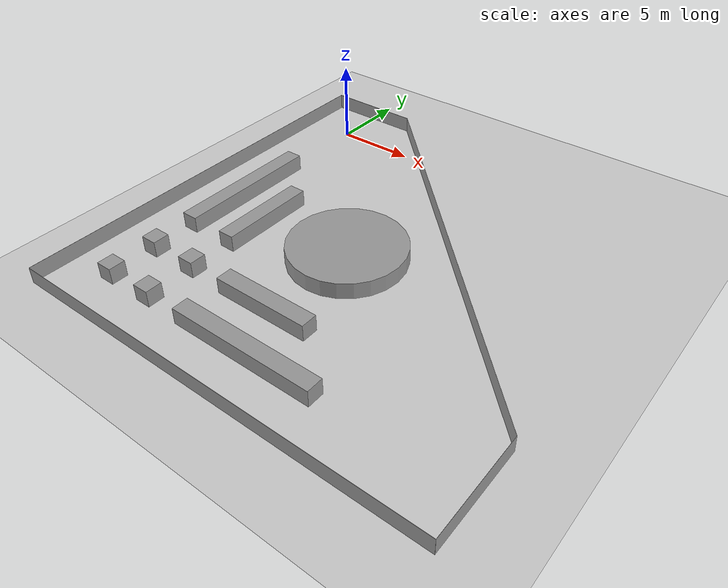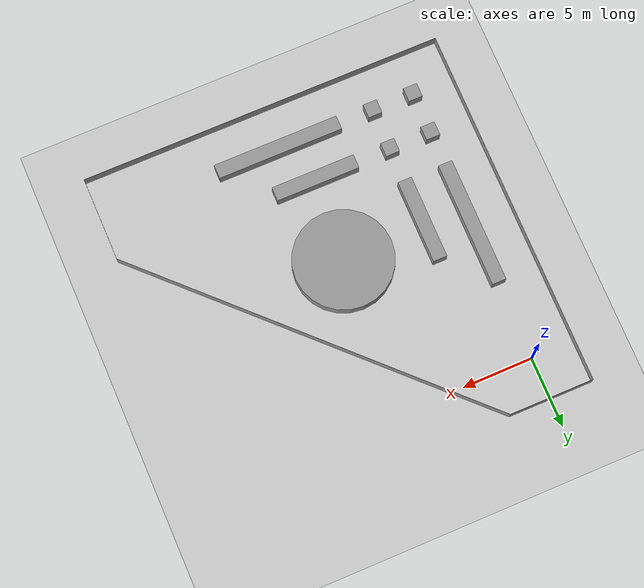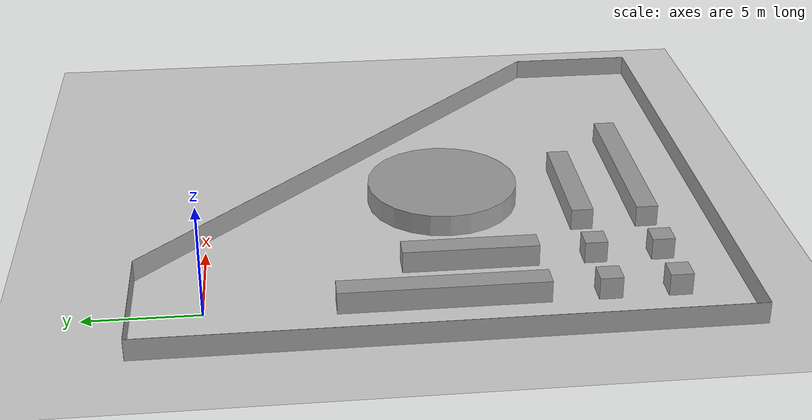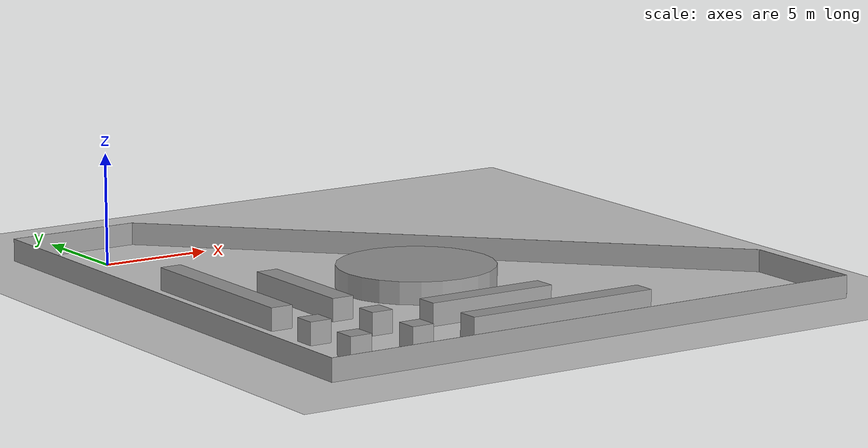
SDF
<sdf version="1.4">
 <world name="default">
  <light name="sun" type="directional">
   <pose>0 0 10 0 -0 0</pose>
   <diffuse>0.8 0.8 0.8 1</diffuse>
   <specular>0.2 0.2 0.2 1</specular>
   <attenuation>
    <range>1000</range>
    <constant>0.9</constant>
    <linear>0.01</linear>
    <quadratic>0.001</quadratic>
   </attenuation>
   <direction>-0.5 0.1 -0.9</direction>
  </light>
  <model name="ground_plane">
   <static>1</static>
   <link name="link">
    <collision name="collision">
     <geometry><plane><normal>0 0 1</normal><size>100 100</size></plane></geometry>
     <surface><friction><ode><mu>100</mu><mu2>50</mu2></ode></friction></surface>
    </collision>
    <visual name="visual">
     <cast_shadows>0</cast_shadows>
     <geometry><plane><normal>0 0 1</normal><size>100 100</size></plane></geometry>
     <material>
      <script><uri>file://media/materials/scripts/gazebo.material</uri><name>Gazebo/Grey</name></script>
     </material>
    </visual>
    <velocity_decay><linear>0</linear><angular>0</angular></velocity_decay>
   </link>
  </model>
  <physics type="ode">
   <max_step_size>0.001</max_step_size>
   <real_time_factor>1</real_time_factor>
   <real_time_update_rate>1000</real_time_update_rate>
   <gravity>0 0 -9.8</gravity>
  </physics>
  <scene><ambient>0.4 0.4 0.4 1</ambient><background>0.7 0.7 0.7 1</background><shadows>1</shadows></scene>
  <spherical_coordinates>
   <surface_model>EARTH_WGS84</surface_model>
   <latitude_deg>0</latitude_deg>
   <longitude_deg>0</longitude_deg>
   <elevation>0</elevation>
   <heading_deg>0</heading_deg>
  </spherical_coordinates>
  <model name="north_wall">
   <pose>23 -20 0.5 0 -0 0</pose>
   <link name="link">
    <inertial>
     <mass>1</mass>
     <inertia><ixx>1</ixx><ixy>0</ixy><ixz>0</ixz><iyy>1</iyy><iyz>0</iyz><izz>1</izz></inertia>
    </inertial>
    <collision name="collision"><geometry><box><size>0.01 6 1</size></box></geometry></collision>
    <visual name="visual">
     <geometry><box><size>0.01 6 1</size></box></geometry>
     <material>
      <script><uri>file://media/materials/scripts/gazebo.material</uri><name>Gazebo/Grey</name></script>
     </material>
    </visual>
    <velocity_decay><linear>0</linear><angular>0</angular></velocity_decay>
   </link>
   <static>1</static>
  </model>
  <model name="south_wall">
   <pose>-3 -10 0.5 0 -0 0</pose>
   <link name="link">
    <inertial>
     <mass>1</mass>
     <inertia><ixx>1</ixx><ixy>0</ixy><ixz>0</ixz><iyy>1</iyy><iyz>0</iyz><izz>1</izz></inertia>
    </inertial>
    <collision name="collision"><geometry><box><size>0.01 26 1</size></box></geometry></collision>
    <visual name="visual">
     <geometry><box><size>0.01 26 1</size></box></geometry>
     <material>
      <script><uri>file://media/materials/scripts/gazebo.material</uri><name>Gazebo/Grey</name></script>
     </material>
    </visual>
    <velocity_decay><linear>0</linear><angular>0</angular></velocity_decay>
   </link>
   <static>1</static>
  </model>
  <model name="east_wall">
   <pose>10 -23 0.5 0 -0 0</pose>
   <link name="link">
    <inertial>
     <mass>1</mass>
     <inertia><ixx>1</ixx><ixy>0</ixy><ixz>0</ixz><iyy>1</iyy><iyz>0</iyz><izz>1</izz></inertia>
    </inertial>
    <collision name="collision"><geometry><box><size>26 0.01 1</size></box></geometry></collision>
    <visual name="visual">
     <geometry><box><size>26 0.01 1</size></box></geometry>
     <material>
      <script><uri>file://media/materials/scripts/gazebo.material</uri><name>Gazebo/Grey</name></script>
     </material>
    </visual>
    <velocity_decay><linear>0</linear><angular>0</angular></velocity_decay>
   </link>
   <static>1</static>
  </model>
  <model name="west_wall">
   <pose>0 3 0.5 0 -0 0</pose>
   <link name="link">
    <inertial>
     <mass>1</mass>
     <inertia><ixx>1</ixx><ixy>0</ixy><ixz>0</ixz><iyy>1</iyy><iyz>0</iyz><izz>1</izz></inertia>
    </inertial>
    <collision name="collision"><geometry><box><size>6 0.01 1</size></box></geometry></collision>
    <visual name="visual">
     <geometry><box><size>6 0.01 1</size></box></geometry>
     <material>
      <script><uri>file://media/materials/scripts/gazebo.material</uri><name>Gazebo/Grey</name></script>
     </material>
    </visual>
    <velocity_decay><linear>0</linear><angular>0</angular></velocity_decay>
   </link>
   <static>1</static>
  </model>
  <model name="diag_wall">
   <pose>13 -7 0.5 0 -0 -0.785398</pose>
   <link name="link">
    <inertial>
     <mass>1</mass>
     <inertia><ixx>1</ixx><ixy>0</ixy><ixz>0</ixz><iyy>1</iyy><iyz>0</iyz><izz>1</izz></inertia>
    </inertial>
    <collision name="collision"><geometry><box><size>28.2842712475 0.01 1</size></box></geometry></collision>
    <visual name="visual">
     <geometry><box><size>28.2842712475 0.01 1</size></box></geometry>
     <material>
      <script><uri>file://media/materials/scripts/gazebo.material</uri><name>Gazebo/Grey</name></script>
     </material>
    </visual>
    <velocity_decay><linear>0</linear><angular>0</angular></velocity_decay>
   </link>
   <static>1</static>
  </model>
  <model name="divider_1">
   <pose>9 -11 0.5 0 -0 0.78539816339</pose>
   <link name="link">
    <inertial>
     <mass>1</mass>
     <inertia><ixx>1</ixx><ixy>0</ixy><ixz>0</ixz><iyy>1</iyy><iyz>0</iyz><izz>1</izz></inertia>
    </inertial>
    <collision name="collision">
     <geometry><cylinder><radius>3.5</radius><length>1</length></cylinder></geometry>
    </collision>
    <visual name="visual">
     <geometry><cylinder><radius>3.5</radius><length>1</length></cylinder></geometry>
     <material>
      <script><uri>file://media/materials/scripts/gazebo.material</uri><name>Gazebo/Grey</name></script>
     </material>
    </visual>
    <velocity_decay><linear>0</linear><angular>0</angular></velocity_decay>
   </link>
   <static>1</static>
  </model>
  <model name="divider_2">
   <pose>8.5 -17 0.5 0 -0 0</pose>
   <link name="link">
    <inertial>
     <mass>1</mass>
     <inertia><ixx>1</ixx><ixy>0</ixy><ixz>0</ixz><iyy>1</iyy><iyz>0</iyz><izz>1</izz></inertia>
    </inertial>
    <collision name="collision"><geometry><box><size>6 1 1</size></box></geometry></collision>
    <visual name="visual">
     <geometry><box><size>6 1 1</size></box></geometry>
     <material>
      <script><uri>file://media/materials/scripts/gazebo.material</uri><name>Gazebo/Grey</name></script>
     </material>
    </visual>
    <velocity_decay><linear>0</linear><angular>0</angular></velocity_decay>
   </link>
   <static>1</static>
  </model>
  <model name="divider_3">
   <pose>10 -20 0.5 0 -0 0</pose>
   <link name="link">
    <inertial>
     <mass>1</mass>
     <inertia><ixx>1</ixx><ixy>0</ixy><ixz>0</ixz><iyy>1</iyy><iyz>0</iyz><izz>1</izz></inertia>
    </inertial>
    <collision name="collision"><geometry><box><size>9 1 1</size></box></geometry></collision>
    <visual name="visual">
     <geometry><box><size>9 1 1</size></box></geometry>
     <material>
      <script><uri>file://media/materials/scripts/gazebo.material</uri><name>Gazebo/Grey</name></script>
     </material>
    </visual>
    <velocity_decay><linear>0</linear><angular>0</angular></velocity_decay>
   </link>
   <static>1</static>
  </model>
  <model name="divider_4">
   <pose>3 -11.5 0.5 0 -0 0</pose>
   <link name="link">
    <inertial>
     <mass>1</mass>
     <inertia><ixx>1</ixx><ixy>0</ixy><ixz>0</ixz><iyy>1</iyy><iyz>0</iyz><izz>1</izz></inertia>
    </inertial>
    <collision name="collision"><geometry><box><size>1 6 1</size></box></geometry></collision>
    <visual name="visual">
     <geometry><box><size>1 6 1</size></box></geometry>
     <material>
      <script><uri>file://media/materials/scripts/gazebo.material</uri><name>Gazebo/Grey</name></script>
     </material>
    </visual>
    <velocity_decay><linear>0</linear><angular>0</angular></velocity_decay>
   </link>
   <static>1</static>
  </model>
  <model name="divider_5">
   <pose>3 -17 0.5 0 -0 0</pose>
   <link name="link">
    <inertial>
     <mass>1</mass>
     <inertia><ixx>1</ixx><ixy>0</ixy><ixz>0</ixz><iyy>1</iyy><iyz>0</iyz><izz>1</izz></inertia>
    </inertial>
    <collision name="collision"><geometry><box><size>1 1 1</size></box></geometry></collision>
    <visual name="visual">
     <geometry><box><size>1 1 1</size></box></geometry>
     <material>
      <script><uri>file://media/materials/scripts/gazebo.material</uri><name>Gazebo/Grey</name></script>
     </material>
    </visual>
    <velocity_decay><linear>0</linear><angular>0</angular></velocity_decay>
   </link>
   <static>1</static>
  </model>
  <model name="divider_6">
   <pose>3 -20 0.5 0 -0 0</pose>
   <link name="link">
    <inertial>
     <mass>1</mass>
     <inertia><ixx>1</ixx><ixy>0</ixy><ixz>0</ixz><iyy>1</iyy><iyz>0</iyz><izz>1</izz></inertia>
    </inertial>
    <collision name="collision"><geometry><box><size>1 1 1</size></box></geometry></collision>
    <visual name="visual">
     <geometry><box><size>1 1 1</size></box></geometry>
     <material>
      <script><uri>file://media/materials/scripts/gazebo.material</uri><name>Gazebo/Grey</name></script>
     </material>
    </visual>
    <velocity_decay><linear>0</linear><angular>0</angular></velocity_decay>
   </link>
   <static>1</static>
  </model>
  <model name="divider_7">
   <pose>0 -10 0.5 0 -0 0</pose>
   <link name="link">
    <inertial>
     <mass>1</mass>
     <inertia><ixx>1</ixx><ixy>0</ixy><ixz>0</ixz><iyy>1</iyy><iyz>0</iyz><izz>1</izz></inertia>
    </inertial>
    <collision name="collision"><geometry><box><size>1 9 1</size></box></geometry></collision>
    <visual name="visual">
     <geometry><box><size>1 9 1</size></box></geometry>
     <material>
      <script><uri>file://media/materials/scripts/gazebo.material</uri><name>Gazebo/Grey</name></script>
     </material>
    </visual>
    <velocity_decay><linear>0</linear><angular>0</angular></velocity_decay>
   </link>
   <static>1</static>
  </model>
  <model name="divider_8">
   <pose>0 -17 0.5 0 -0 0</pose>
   <link name="link">
    <inertial>
     <mass>1</mass>
     <inertia><ixx>1</ixx><ixy>0</ixy><ixz>0</ixz><iyy>1</iyy><iyz>0</iyz><izz>1</izz></inertia>
    </inertial>
    <collision name="collision"><geometry><box><size>1 1 1</size></box></geometry></collision>
    <visual name="visual">
     <geometry><box><size>1 1 1</size></box></geometry>
     <material>
      <script><uri>file://media/materials/scripts/gazebo.material</uri><name>Gazebo/Grey</name></script>
     </material>
    </visual>
    <velocity_decay><linear>0</linear><angular>0</angular></velocity_decay>
   </link>
   <static>1</static>
  </model>
  <model name="divider_9">
   <pose>0 -20 0.5 0 -0 0</pose>
   <link name="link">
    <inertial>
     <mass>1</mass>
     <inertia><ixx>1</ixx><ixy>0</ixy><ixz>0</ixz><iyy>1</iyy><iyz>0</iyz><izz>1</izz></inertia>
    </inertial>
    <collision name="collision"><geometry><box><size>1 1 1</size></box></geometry></collision>
    <visual name="visual">
     <geometry><box><size>1 1 1</size></box></geometry>
     <material>
      <script><uri>file://media/materials/scripts/gazebo.material</uri><name>Gazebo/Grey</name></script>
     </material>
    </visual>
    <velocity_decay><linear>0</linear><angular>0</angular></velocity_decay>
   </link>
   <static>1</static>
  </model>
 </world>
</sdf>
